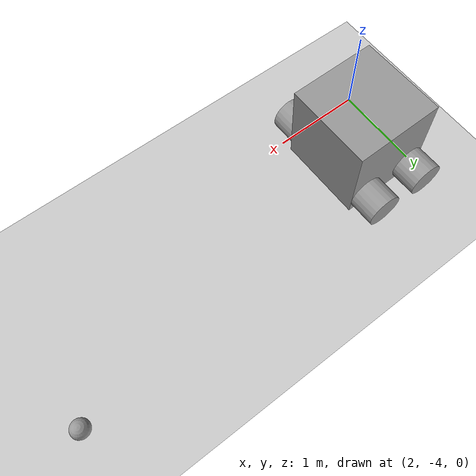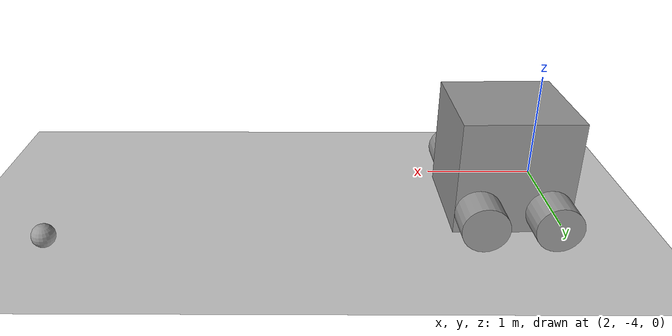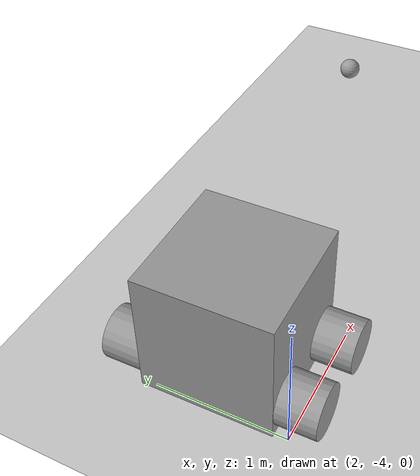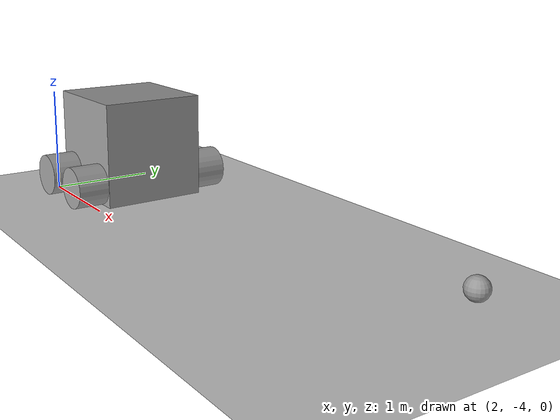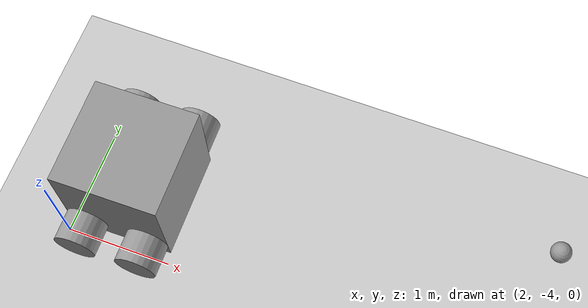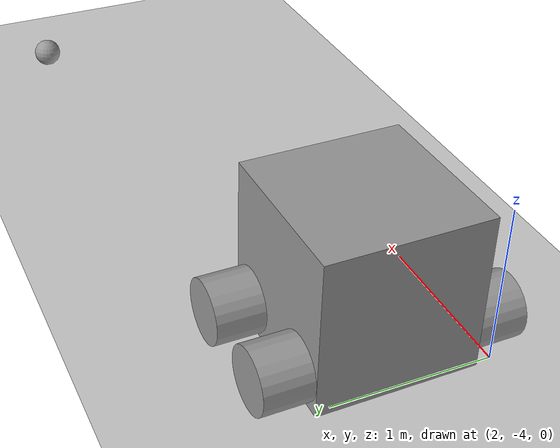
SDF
<sdf version="1.7">
 <world name="default">
  <model name="ground_plane">
   <static>1</static>
   <link name="link">
    <collision name="collision">
     <geometry><plane><normal>0 0 1</normal><size>100 100</size></plane></geometry>
     <surface>
      <contact><collide_bitmask>65535</collide_bitmask></contact>
      <friction><ode><mu>100</mu><mu2>50</mu2></ode></friction>
     </surface>
    </collision>
    <visual name="visual">
     <cast_shadows>0</cast_shadows>
     <geometry><plane><normal>0 0 1</normal><size>100 100</size></plane></geometry>
     <material>
      <script><uri>file://media/materials/scripts/gazebo.material</uri><name>Gazebo/Grey</name></script>
     </material>
    </visual>
   </link>
  </model>
  <model name="model">
   <link name="link_1">
    <inertial>
     <mass>1</mass>
     <inertia>
      <ixx>0.166667</ixx>
      <ixy>0</ixy>
      <ixz>0</ixz>
      <iyy>0.166667</iyy>
      <iyz>0</iyz>
      <izz>0.166667</izz>
     </inertia>
    </inertial>
    <pose>-1.26548 -3.71743 0.72499 0 -0 0</pose>
    <visual name="visual">
     <geometry><box><size>1 1 1</size></box></geometry>
     <material>
      <lighting>1</lighting>
      <script><uri>file://media/materials/scripts/gazebo.material</uri><name>Gazebo/Grey</name></script>
      <shader type="pixel"/>
      <emissive>0 0 0 1</emissive>
     </material>
    </visual>
    <collision name="collision">
     <geometry><box><size>1 1 1</size></box></geometry>
     <surface>
      <friction>
       <ode><mu>1</mu><mu2>1</mu2><fdir1>0 0 0</fdir1><slip1>0</slip1><slip2>0</slip2></ode>
       <torsional>
        <coefficient>1</coefficient>
        <patch_radius>0</patch_radius>
        <surface_radius>0</surface_radius>
        <use_patch_radius>1</use_patch_radius>
        <ode><slip>0</slip></ode>
       </torsional>
      </friction>
      <bounce><restitution_coefficient>0</restitution_coefficient><threshold>1e+06</threshold></bounce>
      <contact>
       <collide_without_contact>0</collide_without_contact>
       <collide_without_contact_bitmask>1</collide_without_contact_bitmask>
       <collide_bitmask>1</collide_bitmask>
       <ode>
        <soft_cfm>0</soft_cfm>
        <soft_erp>0.2</soft_erp>
        <kp>1e+13</kp>
        <kd>1</kd>
        <max_vel>0.01</max_vel>
        <min_depth>0</min_depth>
       </ode>
       <bullet>
        <split_impulse>1</split_impulse>
        <split_impulse_penetration_threshold>-0.01</split_impulse_penetration_threshold>
        <soft_cfm>0</soft_cfm>
        <soft_erp>0.2</soft_erp>
        <kp>1e+13</kp>
        <kd>1</kd>
       </bullet>
      </contact>
     </surface>
    </collision>
   </link>
   <link name="link_3">
    <inertial>
     <mass>1</mass>
     <inertia><ixx>0.145833</ixx><ixy>0</ixy><ixz>0</ixz><iyy>0.145833</iyy><iyz>0</iyz><izz>0.125</izz></inertia>
     <pose>0 0 0 1.5707 -0 0</pose>
    </inertial>
    <pose>-1.56548 -4.36745 0.425004 1.5707 -0 0</pose>
    <visual name="visual">
     <geometry><cylinder><radius>0.2</radius><length>0.3</length></cylinder></geometry>
     <material>
      <lighting>1</lighting>
      <script><uri>file://media/materials/scripts/gazebo.material</uri><name>Gazebo/Grey</name></script>
      <shader type="pixel"><normal_map>__default__</normal_map></shader>
      <ambient>0.3 0.3 0.3 1</ambient>
      <diffuse>0.7 0.7 0.7 1</diffuse>
      <specular>0.01 0.01 0.01 1</specular>
      <emissive>0 0 0 1</emissive>
     </material>
    </visual>
    <collision name="collision">
     <geometry><cylinder><radius>0.2</radius><length>0.3</length></cylinder></geometry>
     <surface>
      <friction>
       <ode><mu>1</mu><mu2>1</mu2><fdir1>0 0 0</fdir1><slip1>0</slip1><slip2>0</slip2></ode>
       <torsional>
        <coefficient>1</coefficient>
        <patch_radius>0</patch_radius>
        <surface_radius>0</surface_radius>
        <use_patch_radius>1</use_patch_radius>
        <ode><slip>0</slip></ode>
       </torsional>
      </friction>
      <bounce><restitution_coefficient>0</restitution_coefficient><threshold>1e+06</threshold></bounce>
      <contact>
       <collide_without_contact>0</collide_without_contact>
       <collide_without_contact_bitmask>1</collide_without_contact_bitmask>
       <collide_bitmask>1</collide_bitmask>
       <ode>
        <soft_cfm>0</soft_cfm>
        <soft_erp>0.2</soft_erp>
        <kp>1e+13</kp>
        <kd>1</kd>
        <max_vel>0.01</max_vel>
        <min_depth>0</min_depth>
       </ode>
       <bullet>
        <split_impulse>1</split_impulse>
        <split_impulse_penetration_threshold>-0.01</split_impulse_penetration_threshold>
        <soft_cfm>0</soft_cfm>
        <soft_erp>0.2</soft_erp>
        <kp>1e+13</kp>
        <kd>1</kd>
       </bullet>
      </contact>
     </surface>
    </collision>
   </link>
   <link name="link_3_clone">
    <inertial>
     <mass>1</mass>
     <inertia><ixx>0.145833</ixx><ixy>0</ixy><ixz>0</ixz><iyy>0.145833</iyy><iyz>0</iyz><izz>0.125</izz></inertia>
     <pose>0 0 0 1.5707 -0 0</pose>
    </inertial>
    <pose>-1.56523 -3.06657 0.425002 1.5707 -0 0</pose>
    <visual name="visual">
     <geometry><cylinder><radius>0.2</radius><length>0.3</length></cylinder></geometry>
     <material>
      <lighting>1</lighting>
      <script><uri>file://media/materials/scripts/gazebo.material</uri><name>Gazebo/Grey</name></script>
      <shader type="pixel"><normal_map>__default__</normal_map></shader>
      <ambient>0.3 0.3 0.3 1</ambient>
      <diffuse>0.7 0.7 0.7 1</diffuse>
      <specular>0.01 0.01 0.01 1</specular>
      <emissive>0 0 0 1</emissive>
     </material>
    </visual>
    <collision name="collision">
     <geometry><cylinder><radius>0.2</radius><length>0.3</length></cylinder></geometry>
     <surface>
      <friction>
       <ode><mu>1</mu><mu2>1</mu2><fdir1>0 0 0</fdir1><slip1>0</slip1><slip2>0</slip2></ode>
       <torsional>
        <coefficient>1</coefficient>
        <patch_radius>0</patch_radius>
        <surface_radius>0</surface_radius>
        <use_patch_radius>1</use_patch_radius>
        <ode><slip>0</slip></ode>
       </torsional>
      </friction>
      <bounce><restitution_coefficient>0</restitution_coefficient><threshold>1e+06</threshold></bounce>
      <contact>
       <collide_without_contact>0</collide_without_contact>
       <collide_without_contact_bitmask>1</collide_without_contact_bitmask>
       <collide_bitmask>1</collide_bitmask>
       <ode>
        <soft_cfm>0</soft_cfm>
        <soft_erp>0.2</soft_erp>
        <kp>1e+13</kp>
        <kd>1</kd>
        <max_vel>0.01</max_vel>
        <min_depth>0</min_depth>
       </ode>
       <bullet>
        <split_impulse>1</split_impulse>
        <split_impulse_penetration_threshold>-0.01</split_impulse_penetration_threshold>
        <soft_cfm>0</soft_cfm>
        <soft_erp>0.2</soft_erp>
        <kp>1e+13</kp>
        <kd>1</kd>
       </bullet>
      </contact>
     </surface>
    </collision>
   </link>
   <link name="link_3_clone_clone">
    <inertial>
     <mass>1</mass>
     <inertia><ixx>0.145833</ixx><ixy>0</ixy><ixz>0</ixz><iyy>0.145833</iyy><iyz>0</iyz><izz>0.125</izz></inertia>
     <pose>0 0 0 1.5707 -0 0</pose>
    </inertial>
    <pose>-0.965733 -4.36829 0.425001 1.5707 -0 0</pose>
    <visual name="visual">
     <geometry><cylinder><radius>0.2</radius><length>0.3</length></cylinder></geometry>
     <material>
      <lighting>1</lighting>
      <script><uri>file://media/materials/scripts/gazebo.material</uri><name>Gazebo/Grey</name></script>
      <shader type="pixel"><normal_map>__default__</normal_map></shader>
      <ambient>0.3 0.3 0.3 1</ambient>
      <diffuse>0.7 0.7 0.7 1</diffuse>
      <specular>0.01 0.01 0.01 1</specular>
      <emissive>0 0 0 1</emissive>
     </material>
    </visual>
    <collision name="collision">
     <geometry><cylinder><radius>0.2</radius><length>0.3</length></cylinder></geometry>
     <surface>
      <friction>
       <ode><mu>1</mu><mu2>1</mu2><fdir1>0 0 0</fdir1><slip1>0</slip1><slip2>0</slip2></ode>
       <torsional>
        <coefficient>1</coefficient>
        <patch_radius>0</patch_radius>
        <surface_radius>0</surface_radius>
        <use_patch_radius>1</use_patch_radius>
        <ode><slip>0</slip></ode>
       </torsional>
      </friction>
      <bounce><restitution_coefficient>0</restitution_coefficient><threshold>1e+06</threshold></bounce>
      <contact>
       <collide_without_contact>0</collide_without_contact>
       <collide_without_contact_bitmask>1</collide_without_contact_bitmask>
       <collide_bitmask>1</collide_bitmask>
       <ode>
        <soft_cfm>0</soft_cfm>
        <soft_erp>0.2</soft_erp>
        <kp>1e+13</kp>
        <kd>1</kd>
        <max_vel>0.01</max_vel>
        <min_depth>0</min_depth>
       </ode>
       <bullet>
        <split_impulse>1</split_impulse>
        <split_impulse_penetration_threshold>-0.01</split_impulse_penetration_threshold>
        <soft_cfm>0</soft_cfm>
        <soft_erp>0.2</soft_erp>
        <kp>1e+13</kp>
        <kd>1</kd>
       </bullet>
      </contact>
     </surface>
    </collision>
   </link>
   <link name="link_3_clone_clone_clone">
    <inertial>
     <mass>1</mass>
     <inertia><ixx>0.145833</ixx><ixy>0</ixy><ixz>0</ixz><iyy>0.145833</iyy><iyz>0</iyz><izz>0.125</izz></inertia>
     <pose>0 0 0 1.5707 -0 0</pose>
    </inertial>
    <pose>-0.964509 -3.06724 0.425003 1.5707 -1e-06 -0.000844</pose>
    <visual name="visual">
     <geometry><cylinder><radius>0.2</radius><length>0.3</length></cylinder></geometry>
     <material>
      <lighting>1</lighting>
      <script><uri>file://media/materials/scripts/gazebo.material</uri><name>Gazebo/Grey</name></script>
      <shader type="pixel"><normal_map>__default__</normal_map></shader>
      <ambient>0.3 0.3 0.3 1</ambient>
      <diffuse>0.7 0.7 0.7 1</diffuse>
      <specular>0.01 0.01 0.01 1</specular>
      <emissive>0 0 0 1</emissive>
     </material>
    </visual>
    <collision name="collision">
     <geometry><cylinder><radius>0.2</radius><length>0.3</length></cylinder></geometry>
     <surface>
      <friction>
       <ode><mu>1</mu><mu2>1</mu2><fdir1>0 0 0</fdir1><slip1>0</slip1><slip2>0</slip2></ode>
       <torsional>
        <coefficient>1</coefficient>
        <patch_radius>0</patch_radius>
        <surface_radius>0</surface_radius>
        <use_patch_radius>1</use_patch_radius>
        <ode><slip>0</slip></ode>
       </torsional>
      </friction>
      <bounce><restitution_coefficient>0</restitution_coefficient><threshold>1e+06</threshold></bounce>
      <contact>
       <collide_without_contact>0</collide_without_contact>
       <collide_without_contact_bitmask>1</collide_without_contact_bitmask>
       <collide_bitmask>1</collide_bitmask>
       <ode>
        <soft_cfm>0</soft_cfm>
        <soft_erp>0.2</soft_erp>
        <kp>1e+13</kp>
        <kd>1</kd>
        <max_vel>0.01</max_vel>
        <min_depth>0</min_depth>
       </ode>
       <bullet>
        <split_impulse>1</split_impulse>
        <split_impulse_penetration_threshold>-0.01</split_impulse_penetration_threshold>
        <soft_cfm>0</soft_cfm>
        <soft_erp>0.2</soft_erp>
        <kp>1e+13</kp>
        <kd>1</kd>
       </bullet>
      </contact>
     </surface>
    </collision>
   </link>
   <joint name="link_1_JOINT_0_0" type="revolute">
    <parent>link_1</parent>
    <child>link_3_clone</child>
    <axis>
     <xyz>0 0 1</xyz>
     <limit>
      <lower>-1.79769e+308</lower>
      <upper>1.79769e+308</upper>
      <effort>-1</effort>
      <velocity>-1</velocity>
     </limit>
     <dynamics>
      <spring_reference>0</spring_reference>
      <spring_stiffness>0</spring_stiffness>
      <damping>0</damping>
      <friction>0</friction>
     </dynamics>
    </axis>
    <physics>
     <ode><limit><cfm>0</cfm><erp>0.2</erp></limit><suspension><cfm>0</cfm><erp>0.2</erp></suspension></ode>
    </physics>
   </joint>
   <joint name="link_1_JOINT_0" type="revolute">
    <parent>link_1</parent>
    <child>link_3</child>
    <pose>0 0 0 0 -0.09 0</pose>
    <axis>
     <xyz>0 0 1</xyz>
     <limit>
      <lower>-1.79769e+308</lower>
      <upper>1.79769e+308</upper>
      <effort>-1</effort>
      <velocity>-1</velocity>
     </limit>
     <dynamics>
      <spring_reference>0</spring_reference>
      <spring_stiffness>0</spring_stiffness>
      <damping>0</damping>
      <friction>0</friction>
     </dynamics>
    </axis>
    <physics>
     <ode><limit><cfm>0</cfm><erp>0.2</erp></limit><suspension><cfm>0</cfm><erp>0.2</erp></suspension></ode>
    </physics>
   </joint>
   <joint name="link_1_JOINT_1" type="revolute">
    <parent>link_1</parent>
    <child>link_3_clone_clone_clone</child>
    <axis>
     <xyz>0 0 1</xyz>
     <limit>
      <lower>-1.79769e+308</lower>
      <upper>1.79769e+308</upper>
      <effort>-1</effort>
      <velocity>-1</velocity>
     </limit>
     <dynamics>
      <spring_reference>0</spring_reference>
      <spring_stiffness>0</spring_stiffness>
      <damping>0</damping>
      <friction>0</friction>
     </dynamics>
    </axis>
    <physics>
     <ode><limit><cfm>0</cfm><erp>0.2</erp></limit><suspension><cfm>0</cfm><erp>0.2</erp></suspension></ode>
    </physics>
   </joint>
   <joint name="link_1_JOINT_2" type="revolute">
    <parent>link_1</parent>
    <child>link_3_clone_clone</child>
    <axis>
     <xyz>0 0 1</xyz>
     <limit>
      <lower>-1.79769e+308</lower>
      <upper>1.79769e+308</upper>
      <effort>-1</effort>
      <velocity>-1</velocity>
     </limit>
     <dynamics>
      <spring_reference>0</spring_reference>
      <spring_stiffness>0</spring_stiffness>
      <damping>0</damping>
      <friction>0</friction>
     </dynamics>
    </axis>
    <physics>
     <ode><limit><cfm>0</cfm><erp>0.2</erp></limit><suspension><cfm>0</cfm><erp>0.2</erp></suspension></ode>
    </physics>
   </joint>
   <static>0</static>
   <pose>3.69258 0.340202 -0.22497 2e-06 -1.2e-05 0.011768</pose>
  </model>
  <model name="my_ball">
   <link name="link_0">
    <inertial>
     <mass>1</mass>
     <inertia><ixx>0.1</ixx><ixy>0</ixy><ixz>0</ixz><iyy>0.1</iyy><iyz>0</iyz><izz>0.1</izz></inertia>
    </inertial>
    <visual name="visual">
     <geometry><sphere><radius>0.1</radius></sphere></geometry>
     <material>
      <lighting>1</lighting>
      <script><uri>file://media/materials/scripts/gazebo.material</uri><name>Gazebo/Grey</name></script>
      <shader type="pixel"><normal_map>__default__</normal_map></shader>
      <ambient>1 1 1 1</ambient>
      <diffuse>1 1 1 1</diffuse>
      <specular>1 1 1 1</specular>
      <emissive>1 1 1 1</emissive>
     </material>
    </visual>
    <collision name="collision">
     <geometry><sphere><radius>0.1</radius></sphere></geometry>
     <surface>
      <friction>
       <ode><mu>1</mu><mu2>1</mu2><fdir1>0 0 0</fdir1><slip1>0</slip1><slip2>0</slip2></ode>
       <torsional>
        <coefficient>1</coefficient>
        <patch_radius>0</patch_radius>
        <surface_radius>0</surface_radius>
        <use_patch_radius>1</use_patch_radius>
        <ode><slip>0</slip></ode>
       </torsional>
      </friction>
      <bounce><restitution_coefficient>0</restitution_coefficient><threshold>1e+06</threshold></bounce>
      <contact>
       <collide_without_contact>0</collide_without_contact>
       <collide_without_contact_bitmask>1</collide_without_contact_bitmask>
       <collide_bitmask>1</collide_bitmask>
       <ode>
        <soft_cfm>0</soft_cfm>
        <soft_erp>0.2</soft_erp>
        <kp>1e+13</kp>
        <kd>1</kd>
        <max_vel>0.01</max_vel>
        <min_depth>0</min_depth>
       </ode>
       <bullet>
        <split_impulse>1</split_impulse>
        <split_impulse_penetration_threshold>-0.01</split_impulse_penetration_threshold>
        <soft_cfm>0</soft_cfm>
        <soft_erp>0.2</soft_erp>
        <kp>1e+13</kp>
        <kd>1</kd>
       </bullet>
      </contact>
     </surface>
    </collision>
   </link>
   <static>0</static>
   <pose>6.38204 -2.66558 0.1 0 -0 0</pose>
  </model>
 </world>
</sdf>
